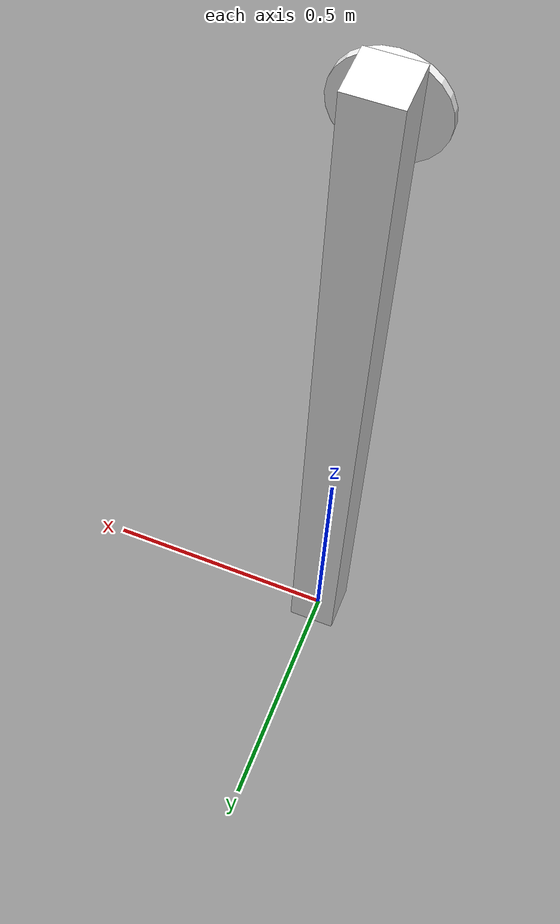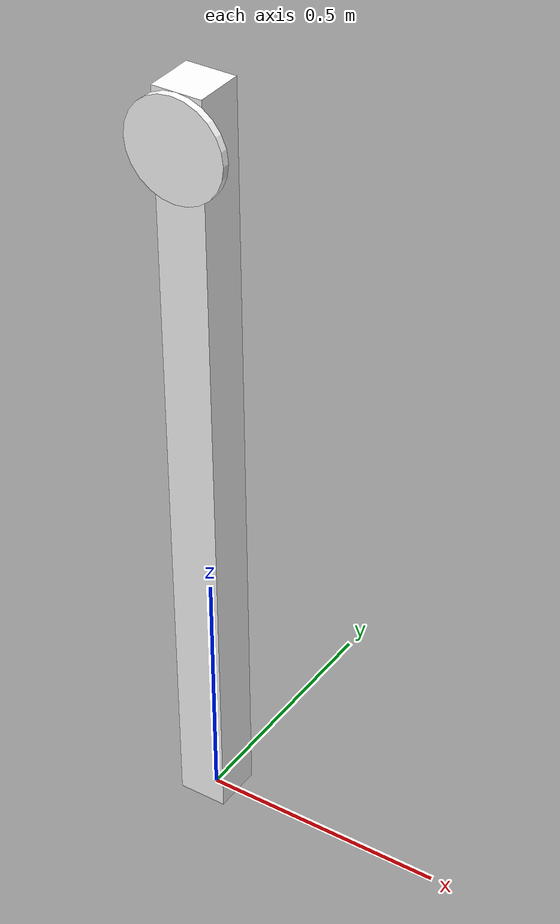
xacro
<?xml version="1.0"?>
<robot name="torobo" xmlns:xacro="http://ros.org/wiki/xacro">
  <!-- =============== Constants =============== -->
  <xacro:property name="M_PI" value="3.1415926535897931"/>
  <xacro:property name="COL_K" value="1.2"/>
  <!-- =============== Link & Joint =============== -->
  <link name="world"/>

  <joint name="joint_base" type="fixed">
    <origin xyz="0 -0.065 1.46" rpy="${90*M_PI/180} 0 0"/>
    <parent link="world"/>
    <child link="base"/>
  </joint>

  <link name="base">
    <visual>
      <origin xyz="0 0 -0.0075" />
      <geometry>
        <cylinder length="0.015" radius="0.1"/>
      </geometry>
      <material name="white">
        <color rgba="1 1 1 1"/>
      </material>
    </visual>
    <visual>
      <origin xyz="0 -0.68 -0.065" rpy="${-90*M_PI/180} 0 0"/>
      <geometry>
        <box size="0.10 0.10 1.56"/>
      </geometry>
      <material name="white">
        <color rgba="1 1 1 1"/>
      </material>
    </visual>
    <collision>
      <origin xyz="0 0 -0.0075" />
      <geometry>
        <cylinder length="0.015" radius="0.1"/>
      </geometry>
    </collision>
    <collision>
      <origin xyz="0 -0.68 -0.065" rpy="${-90*M_PI/180} 0 0"/>
      <geometry>
        <box size="0.10 0.10 1.56"/>
      </geometry>
    </collision>
    <inertial>
      <origin xyz="0 0 0"/>
      <mass value="1"/>
      <inertia
        ixx="1" ixy="0" ixz="0"
        iyy="1" iyz="0" izz="1"/>
    </inertial>
  </link>

</robot>
